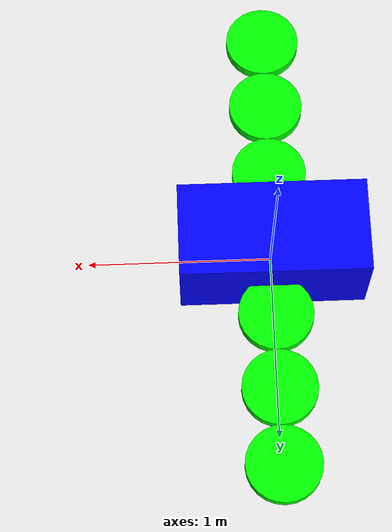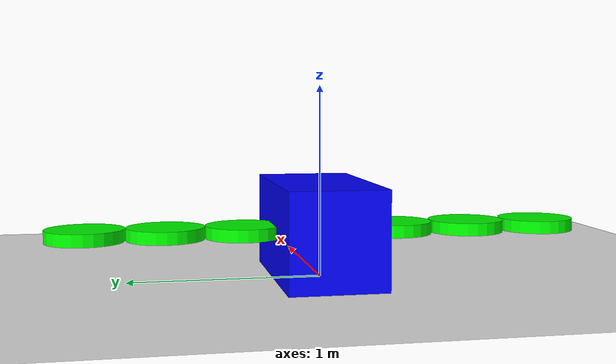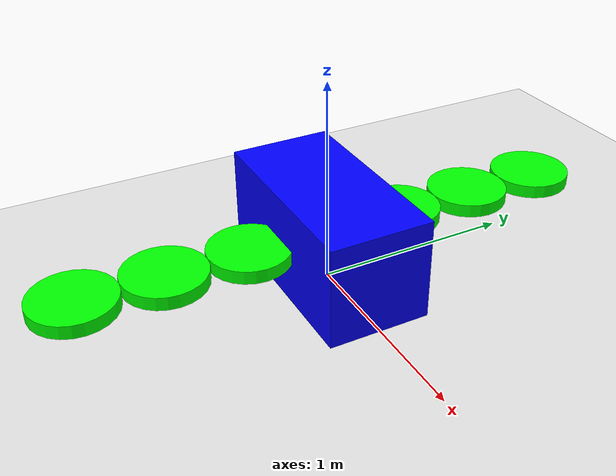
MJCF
<mujoco><worldbody><light diffuse=".5 .5 .5" pos="0 0 3" dir="0 0 -1" /><geom name="ground" type="plane" size="5 5 0.1" rgba=".9 .9 .9 1" /><body name="body"><body name="wing0" pos="0 -0.4 0.25" euler="0 0 90"><joint name="wing0link" type="hinge" axis="0 0 1" range="-1 1" /><geom name="wing0" type="cylinder" size="0.2 0.0325" pos="0 0 0" rgba="0 1 0 1" mass="1" /><body name="wing1" euler="0 0 0"><body name="wing2" euler="0 0 0" /><joint name="wing2link" type="hinge" pos="0 0 0" axis="1 0 0" range="-78 78" /><geom name="wing2" type="cylinder" size="0.2 0.0325" pos="-0.8 0 0" rgba="0 1 0 1" mass="1.5" /></body><joint name="wing1link" type="hinge" pos="0 0 0" axis="1 0 0" range="-79 79" /><geom name="wing1" type="cylinder" size="0.2 0.0325" pos="-0.4 0 0" rgba="0 1 0 1" mass="1.5" /></body></body><freejoint name="root" /><geom name="torso" type="box" size="0.5 0.25 0.25" pos="0 0 0.25" rgba="0 0 1 1" mass="0.1" /><body name="wing0" pos="0 0.4 0.25" euler="0 0 90"><joint name="wing0link" type="hinge" axis="0 0 1" range="-1 1" /><geom name="wing0" type="cylinder" size="0.2 0.0325" pos="0 0 0" rgba="0 1 0 1" mass="1" /><body name="wing1" euler="0 0 0"><body name="wing2" euler="0 0 0" /><joint name="wing2link" type="hinge" pos="0 0 0" axis="1 0 0" range="-99 99" /><geom name="wing2" type="cylinder" size="0.2 0.0325" pos="0.8 0 0" rgba="0 1 0 1" mass="1.5" /></body><joint name="wing1link" type="hinge" pos="0 0 0" axis="1 0 0" range="-59 59" /><geom name="wing1" type="cylinder" size="0.2 0.0325" pos="0.4 0 0" rgba="0 1 0 1" mass="1.5" /></body></worldbody><actuator><motor name="wing0m" joint="wing0link" gear="49" ctrllimited="true" ctrlrange="-5 5" /><motor name="wing1m" joint="wing1link" gear="48" ctrllimited="true" ctrlrange="-5 5" /><motor name="wing2m" joint="wing2link" gear="7" ctrllimited="true" ctrlrange="-5 5" /><motor name="wing0m" joint="wing0link" gear="66" ctrllimited="true" ctrlrange="-5 5" /><motor name="wing1m" joint="wing1link" gear="13" ctrllimited="true" ctrlrange="-5 5" /><motor name="wing2m" joint="wing2link" gear="85" ctrllimited="true" ctrlrange="-5 5" /></actuator></mujoco>
